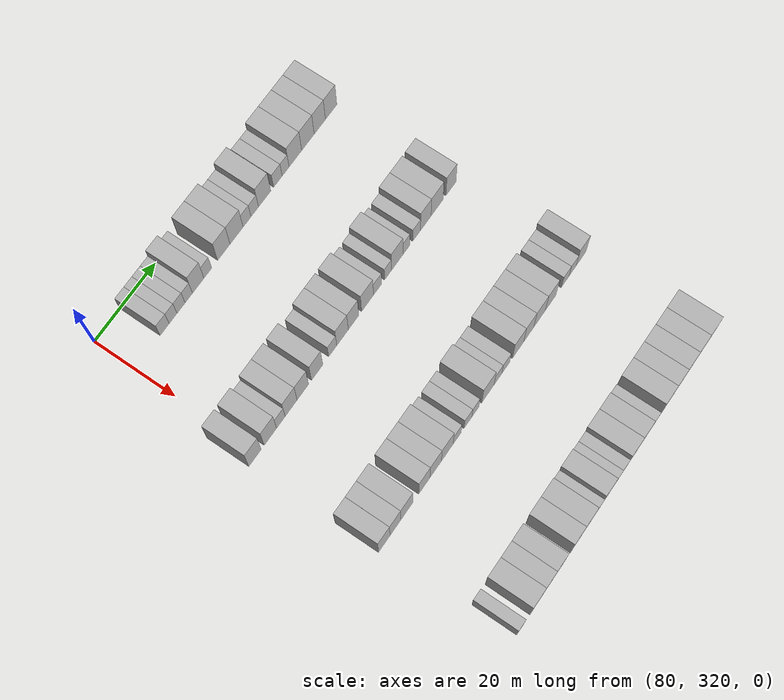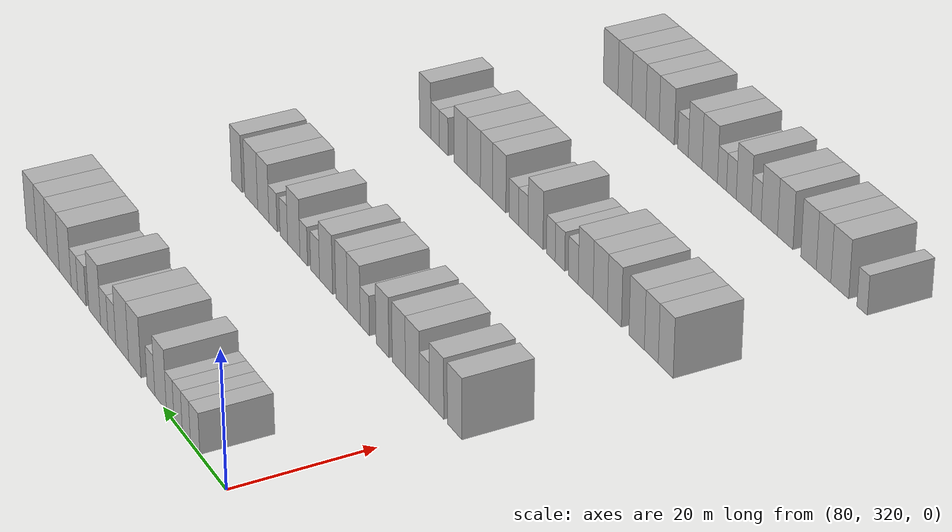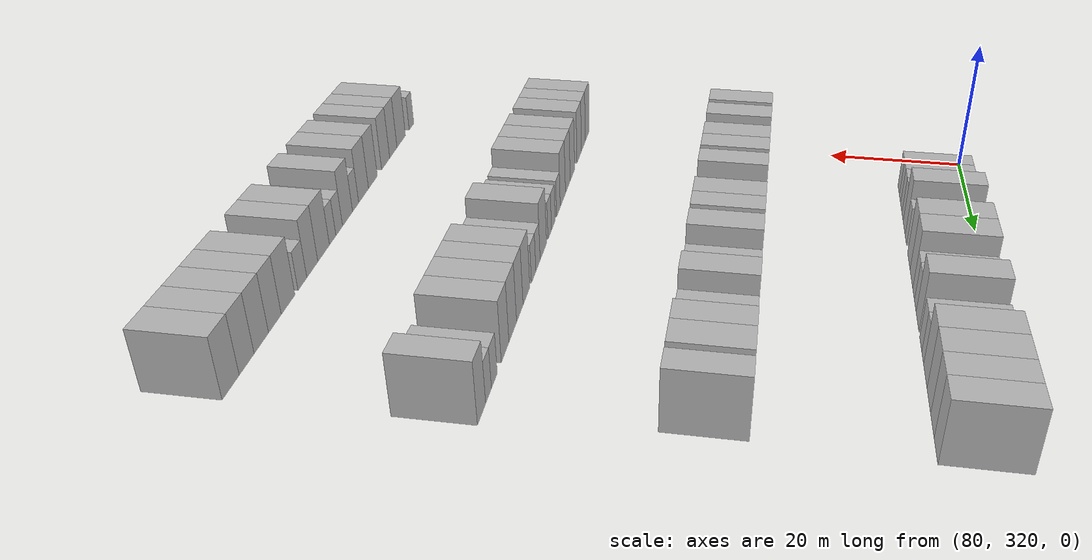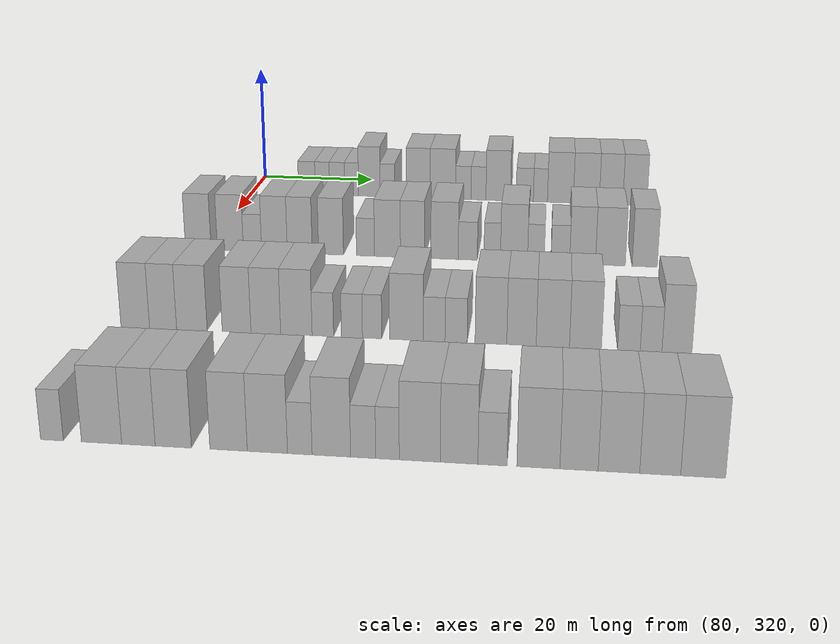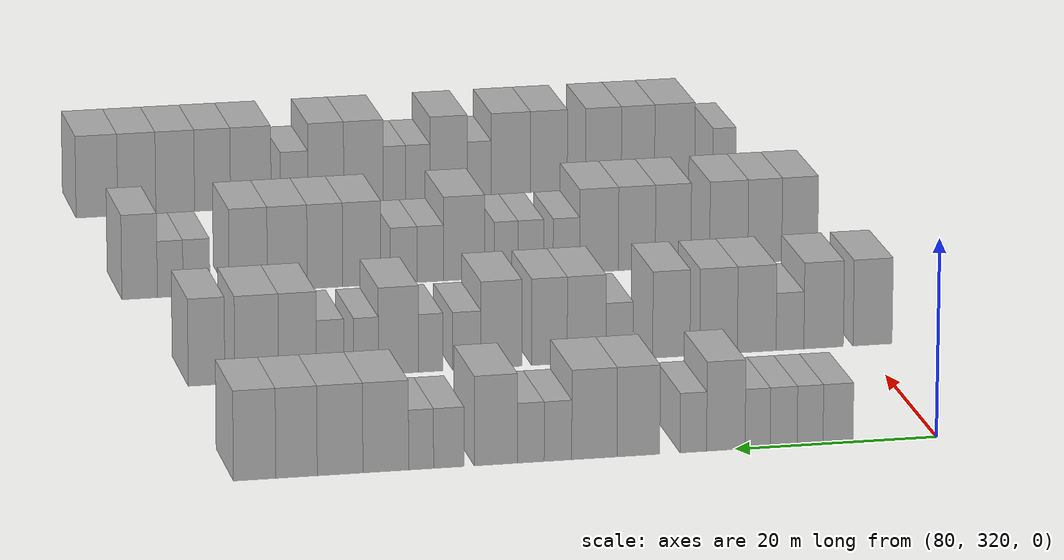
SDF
<sdf version="1.6">
 <world name="default">
  <model name="building_642">
   <static>1</static>
   <pose>85.0000 329.8066 0 0.000000 0.000000 0.000000</pose>
   <link name="link">
    <pose>0 0 3.00 0 0 0</pose>
    <collision name="collision"><geometry><box><size>10.0000 2.9880 6.0000</size></box></geometry></collision>
    <visual name="visual">
     <cast_shadows>0</cast_shadows>
     <geometry><box><size>10.0000 2.9880 6.0000</size></box></geometry>
     <material>
      <script>
       <uri>model://HANNAS_wall/materials/scripts</uri>
       <uri>model://HANNAS_wall/materials/textures</uri>
       <name>vrc/HANNAS_wall</name>
      </script>
     </material>
    </visual>
   </link>
  </model>
  <model name="building_643">
   <static>1</static>
   <pose>85.0000 332.5891 0 0.000000 0.000000 0.000000</pose>
   <link name="link">
    <pose>0 0 3.00 0 0 0</pose>
    <collision name="collision"><geometry><box><size>10.0000 2.5770 6.0000</size></box></geometry></collision>
    <visual name="visual">
     <cast_shadows>0</cast_shadows>
     <geometry><box><size>10.0000 2.5770 6.0000</size></box></geometry>
     <material>
      <script>
       <uri>model://HANNAS_wall/materials/scripts</uri>
       <uri>model://HANNAS_wall/materials/textures</uri>
       <name>vrc/HANNAS_wall</name>
      </script>
     </material>
    </visual>
   </link>
  </model>
  <model name="building_644">
   <static>1</static>
   <pose>85.0000 335.2180 0 0.000000 0.000000 0.000000</pose>
   <link name="link">
    <pose>0 0 3.00 0 0 0</pose>
    <collision name="collision"><geometry><box><size>10.0000 2.6808 6.0000</size></box></geometry></collision>
    <visual name="visual">
     <cast_shadows>0</cast_shadows>
     <geometry><box><size>10.0000 2.6808 6.0000</size></box></geometry>
     <material>
      <script>
       <uri>model://HANNAS_wall/materials/scripts</uri>
       <uri>model://HANNAS_wall/materials/textures</uri>
       <name>vrc/HANNAS_wall</name>
      </script>
     </material>
    </visual>
   </link>
  </model>
  <model name="building_645">
   <static>1</static>
   <pose>85.0000 337.7923 0 0.000000 0.000000 0.000000</pose>
   <link name="link">
    <pose>0 0 3.00 0 0 0</pose>
    <collision name="collision"><geometry><box><size>10.0000 2.4677 6.0000</size></box></geometry></collision>
    <visual name="visual">
     <cast_shadows>0</cast_shadows>
     <geometry><box><size>10.0000 2.4677 6.0000</size></box></geometry>
     <material>
      <script>
       <uri>model://HANNAS_wall/materials/scripts</uri>
       <uri>model://HANNAS_wall/materials/textures</uri>
       <name>vrc/HANNAS_wall</name>
      </script>
     </material>
    </visual>
   </link>
  </model>
  <model name="building_646">
   <static>1</static>
   <pose>85.0000 340.9295 0 0.000000 0.000000 0.000000</pose>
   <link name="link">
    <pose>0 0 4.50 0 0 0</pose>
    <collision name="collision"><geometry><box><size>10.0000 3.8066 9.0000</size></box></geometry></collision>
    <visual name="visual">
     <cast_shadows>0</cast_shadows>
     <geometry><box><size>10.0000 3.8066 9.0000</size></box></geometry>
     <material>
      <script>
       <uri>model://HANNAS_wall/materials/scripts</uri>
       <uri>model://HANNAS_wall/materials/textures</uri>
       <name>vrc/HANNAS_wall</name>
      </script>
     </material>
    </visual>
   </link>
  </model>
  <model name="building_647">
   <static>1</static>
   <pose>85.0000 344.1410 0 0.000000 0.000000 0.000000</pose>
   <link name="link">
    <pose>0 0 3.00 0 0 0</pose>
    <collision name="collision"><geometry><box><size>10.0000 2.6164 6.0000</size></box></geometry></collision>
    <visual name="visual">
     <cast_shadows>0</cast_shadows>
     <geometry><box><size>10.0000 2.6164 6.0000</size></box></geometry>
     <material>
      <script>
       <uri>model://HANNAS_wall/materials/scripts</uri>
       <uri>model://HANNAS_wall/materials/textures</uri>
       <name>vrc/HANNAS_wall</name>
      </script>
     </material>
    </visual>
   </link>
  </model>
  <model name="building_648">
   <static>1</static>
   <pose>85.0000 349.5538 0 0.000000 0.000000 0.000000</pose>
   <link name="link">
    <pose>0 0 4.50 0 0 0</pose>
    <collision name="collision"><geometry><box><size>10.0000 4.2094 9.0000</size></box></geometry></collision>
    <visual name="visual">
     <cast_shadows>0</cast_shadows>
     <geometry><box><size>10.0000 4.2094 9.0000</size></box></geometry>
     <material>
      <script>
       <uri>model://HANNAS_wall/materials/scripts</uri>
       <uri>model://HANNAS_wall/materials/textures</uri>
       <name>vrc/HANNAS_wall</name>
      </script>
     </material>
    </visual>
   </link>
  </model>
  <model name="building_649">
   <static>1</static>
   <pose>85.0000 353.8834 0 0.000000 0.000000 0.000000</pose>
   <link name="link">
    <pose>0 0 4.50 0 0 0</pose>
    <collision name="collision"><geometry><box><size>10.0000 4.4497 9.0000</size></box></geometry></collision>
    <visual name="visual">
     <cast_shadows>0</cast_shadows>
     <geometry><box><size>10.0000 4.4497 9.0000</size></box></geometry>
     <material>
      <script>
       <uri>model://HANNAS_wall/materials/scripts</uri>
       <uri>model://HANNAS_wall/materials/textures</uri>
       <name>vrc/HANNAS_wall</name>
      </script>
     </material>
    </visual>
   </link>
  </model>
  <model name="building_650">
   <static>1</static>
   <pose>85.0000 357.4576 0 0.000000 0.000000 0.000000</pose>
   <link name="link">
    <pose>0 0 3.00 0 0 0</pose>
    <collision name="collision"><geometry><box><size>10.0000 2.6986 6.0000</size></box></geometry></collision>
    <visual name="visual">
     <cast_shadows>0</cast_shadows>
     <geometry><box><size>10.0000 2.6986 6.0000</size></box></geometry>
     <material>
      <script>
       <uri>model://HANNAS_wall/materials/scripts</uri>
       <uri>model://HANNAS_wall/materials/textures</uri>
       <name>vrc/HANNAS_wall</name>
      </script>
     </material>
    </visual>
   </link>
  </model>
  <model name="building_651">
   <static>1</static>
   <pose>85.0000 360.1109 0 0.000000 0.000000 0.000000</pose>
   <link name="link">
    <pose>0 0 3.00 0 0 0</pose>
    <collision name="collision"><geometry><box><size>10.0000 2.6080 6.0000</size></box></geometry></collision>
    <visual name="visual">
     <cast_shadows>0</cast_shadows>
     <geometry><box><size>10.0000 2.6080 6.0000</size></box></geometry>
     <material>
      <script>
       <uri>model://HANNAS_wall/materials/scripts</uri>
       <uri>model://HANNAS_wall/materials/textures</uri>
       <name>vrc/HANNAS_wall</name>
      </script>
     </material>
    </visual>
   </link>
  </model>
  <model name="building_652">
   <static>1</static>
   <pose>85.0000 363.5317 0 0.000000 0.000000 0.000000</pose>
   <link name="link">
    <pose>0 0 4.50 0 0 0</pose>
    <collision name="collision"><geometry><box><size>10.0000 4.2335 9.0000</size></box></geometry></collision>
    <visual name="visual">
     <cast_shadows>0</cast_shadows>
     <geometry><box><size>10.0000 4.2335 9.0000</size></box></geometry>
     <material>
      <script>
       <uri>model://HANNAS_wall/materials/scripts</uri>
       <uri>model://HANNAS_wall/materials/textures</uri>
       <name>vrc/HANNAS_wall</name>
      </script>
     </material>
    </visual>
   </link>
  </model>
  <model name="building_653">
   <static>1</static>
   <pose>85.0000 368.1314 0 0.000000 0.000000 0.000000</pose>
   <link name="link">
    <pose>0 0 3.00 0 0 0</pose>
    <collision name="collision"><geometry><box><size>10.0000 2.9658 6.0000</size></box></geometry></collision>
    <visual name="visual">
     <cast_shadows>0</cast_shadows>
     <geometry><box><size>10.0000 2.9658 6.0000</size></box></geometry>
     <material>
      <script>
       <uri>model://HANNAS_wall/materials/scripts</uri>
       <uri>model://HANNAS_wall/materials/textures</uri>
       <name>vrc/HANNAS_wall</name>
      </script>
     </material>
    </visual>
   </link>
  </model>
  <model name="building_654">
   <static>1</static>
   <pose>85.0000 370.8312 0 0.000000 0.000000 0.000000</pose>
   <link name="link">
    <pose>0 0 3.00 0 0 0</pose>
    <collision name="collision"><geometry><box><size>10.0000 2.4338 6.0000</size></box></geometry></collision>
    <visual name="visual">
     <cast_shadows>0</cast_shadows>
     <geometry><box><size>10.0000 2.4338 6.0000</size></box></geometry>
     <material>
      <script>
       <uri>model://HANNAS_wall/materials/scripts</uri>
       <uri>model://HANNAS_wall/materials/textures</uri>
       <name>vrc/HANNAS_wall</name>
      </script>
     </material>
    </visual>
   </link>
  </model>
  <model name="building_655">
   <static>1</static>
   <pose>85.0000 374.2685 0 0.000000 0.000000 0.000000</pose>
   <link name="link">
    <pose>0 0 4.50 0 0 0</pose>
    <collision name="collision"><geometry><box><size>10.0000 4.4406 9.0000</size></box></geometry></collision>
    <visual name="visual">
     <cast_shadows>0</cast_shadows>
     <geometry><box><size>10.0000 4.4406 9.0000</size></box></geometry>
     <material>
      <script>
       <uri>model://HANNAS_wall/materials/scripts</uri>
       <uri>model://HANNAS_wall/materials/textures</uri>
       <name>vrc/HANNAS_wall</name>
      </script>
     </material>
    </visual>
   </link>
  </model>
  <model name="building_656">
   <static>1</static>
   <pose>85.0000 378.7043 0 0.000000 0.000000 0.000000</pose>
   <link name="link">
    <pose>0 0 4.50 0 0 0</pose>
    <collision name="collision"><geometry><box><size>10.0000 4.4311 9.0000</size></box></geometry></collision>
    <visual name="visual">
     <cast_shadows>0</cast_shadows>
     <geometry><box><size>10.0000 4.4311 9.0000</size></box></geometry>
     <material>
      <script>
       <uri>model://HANNAS_wall/materials/scripts</uri>
       <uri>model://HANNAS_wall/materials/textures</uri>
       <name>vrc/HANNAS_wall</name>
      </script>
     </material>
    </visual>
   </link>
  </model>
  <model name="building_657">
   <static>1</static>
   <pose>85.0000 382.9228 0 0.000000 0.000000 0.000000</pose>
   <link name="link">
    <pose>0 0 4.50 0 0 0</pose>
    <collision name="collision"><geometry><box><size>10.0000 4.0059 9.0000</size></box></geometry></collision>
    <visual name="visual">
     <cast_shadows>0</cast_shadows>
     <geometry><box><size>10.0000 4.0059 9.0000</size></box></geometry>
     <material>
      <script>
       <uri>model://HANNAS_wall/materials/scripts</uri>
       <uri>model://HANNAS_wall/materials/textures</uri>
       <name>vrc/HANNAS_wall</name>
      </script>
     </material>
    </visual>
   </link>
  </model>
  <model name="building_658">
   <static>1</static>
   <pose>85.0000 386.9741 0 0.000000 0.000000 0.000000</pose>
   <link name="link">
    <pose>0 0 4.50 0 0 0</pose>
    <collision name="collision"><geometry><box><size>10.0000 4.0967 9.0000</size></box></geometry></collision>
    <visual name="visual">
     <cast_shadows>0</cast_shadows>
     <geometry><box><size>10.0000 4.0967 9.0000</size></box></geometry>
     <material>
      <script>
       <uri>model://HANNAS_wall/materials/scripts</uri>
       <uri>model://HANNAS_wall/materials/textures</uri>
       <name>vrc/HANNAS_wall</name>
      </script>
     </material>
    </visual>
   </link>
  </model>
  <model name="building_865">
   <static>1</static>
   <pose>115.0000 318.8303 0 0.000000 0.000000 0.000000</pose>
   <link name="link">
    <pose>0 0 4.50 0 0 0</pose>
    <collision name="collision"><geometry><box><size>10.0000 4.0419 9.0000</size></box></geometry></collision>
    <visual name="visual">
     <cast_shadows>0</cast_shadows>
     <geometry><box><size>10.0000 4.0419 9.0000</size></box></geometry>
     <material>
      <script>
       <uri>model://HANNAS_wall/materials/scripts</uri>
       <uri>model://HANNAS_wall/materials/textures</uri>
       <name>vrc/HANNAS_wall</name>
      </script>
     </material>
    </visual>
   </link>
  </model>
  <model name="building_866">
   <static>1</static>
   <pose>115.0000 323.8919 0 0.000000 0.000000 0.000000</pose>
   <link name="link">
    <pose>0 0 4.50 0 0 0</pose>
    <collision name="collision"><geometry><box><size>10.0000 4.0814 9.0000</size></box></geometry></collision>
    <visual name="visual">
     <cast_shadows>0</cast_shadows>
     <geometry><box><size>10.0000 4.0814 9.0000</size></box></geometry>
     <material>
      <script>
       <uri>model://HANNAS_wall/materials/scripts</uri>
       <uri>model://HANNAS_wall/materials/textures</uri>
       <name>vrc/HANNAS_wall</name>
      </script>
     </material>
    </visual>
   </link>
  </model>
  <model name="building_867">
   <static>1</static>
   <pose>115.0000 327.3626 0 0.000000 0.000000 0.000000</pose>
   <link name="link">
    <pose>0 0 3.00 0 0 0</pose>
    <collision name="collision"><geometry><box><size>10.0000 2.8599 6.0000</size></box></geometry></collision>
    <visual name="visual">
     <cast_shadows>0</cast_shadows>
     <geometry><box><size>10.0000 2.8599 6.0000</size></box></geometry>
     <material>
      <script>
       <uri>model://HANNAS_wall/materials/scripts</uri>
       <uri>model://HANNAS_wall/materials/textures</uri>
       <name>vrc/HANNAS_wall</name>
      </script>
     </material>
    </visual>
   </link>
  </model>
  <model name="building_868">
   <static>1</static>
   <pose>115.0000 330.7887 0 0.000000 0.000000 0.000000</pose>
   <link name="link">
    <pose>0 0 4.50 0 0 0</pose>
    <collision name="collision"><geometry><box><size>10.0000 3.9924 9.0000</size></box></geometry></collision>
    <visual name="visual">
     <cast_shadows>0</cast_shadows>
     <geometry><box><size>10.0000 3.9924 9.0000</size></box></geometry>
     <material>
      <script>
       <uri>model://HANNAS_wall/materials/scripts</uri>
       <uri>model://HANNAS_wall/materials/textures</uri>
       <name>vrc/HANNAS_wall</name>
      </script>
     </material>
    </visual>
   </link>
  </model>
  <model name="building_869">
   <static>1</static>
   <pose>115.0000 334.7144 0 0.000000 0.000000 0.000000</pose>
   <link name="link">
    <pose>0 0 4.50 0 0 0</pose>
    <collision name="collision"><geometry><box><size>10.0000 3.8589 9.0000</size></box></geometry></collision>
    <visual name="visual">
     <cast_shadows>0</cast_shadows>
     <geometry><box><size>10.0000 3.8589 9.0000</size></box></geometry>
     <material>
      <script>
       <uri>model://HANNAS_wall/materials/scripts</uri>
       <uri>model://HANNAS_wall/materials/textures</uri>
       <name>vrc/HANNAS_wall</name>
      </script>
     </material>
    </visual>
   </link>
  </model>
  <model name="building_870">
   <static>1</static>
   <pose>115.0000 339.5596 0 0.000000 0.000000 0.000000</pose>
   <link name="link">
    <pose>0 0 4.50 0 0 0</pose>
    <collision name="collision"><geometry><box><size>10.0000 3.8315 9.0000</size></box></geometry></collision>
    <visual name="visual">
     <cast_shadows>0</cast_shadows>
     <geometry><box><size>10.0000 3.8315 9.0000</size></box></geometry>
     <material>
      <script>
       <uri>model://HANNAS_wall/materials/scripts</uri>
       <uri>model://HANNAS_wall/materials/textures</uri>
       <name>vrc/HANNAS_wall</name>
      </script>
     </material>
    </visual>
   </link>
  </model>
  <model name="building_871">
   <static>1</static>
   <pose>115.0000 344.8539 0 0.000000 0.000000 0.000000</pose>
   <link name="link">
    <pose>0 0 3.00 0 0 0</pose>
    <collision name="collision"><geometry><box><size>10.0000 2.7570 6.0000</size></box></geometry></collision>
    <visual name="visual">
     <cast_shadows>0</cast_shadows>
     <geometry><box><size>10.0000 2.7570 6.0000</size></box></geometry>
     <material>
      <script>
       <uri>model://HANNAS_wall/materials/scripts</uri>
       <uri>model://HANNAS_wall/materials/textures</uri>
       <name>vrc/HANNAS_wall</name>
      </script>
     </material>
    </visual>
   </link>
  </model>
  <model name="building_872">
   <static>1</static>
   <pose>115.0000 348.2173 0 0.000000 0.000000 0.000000</pose>
   <link name="link">
    <pose>0 0 4.50 0 0 0</pose>
    <collision name="collision"><geometry><box><size>10.0000 3.9699 9.0000</size></box></geometry></collision>
    <visual name="visual">
     <cast_shadows>0</cast_shadows>
     <geometry><box><size>10.0000 3.9699 9.0000</size></box></geometry>
     <material>
      <script>
       <uri>model://HANNAS_wall/materials/scripts</uri>
       <uri>model://HANNAS_wall/materials/textures</uri>
       <name>vrc/HANNAS_wall</name>
      </script>
     </material>
    </visual>
   </link>
  </model>
  <model name="building_873">
   <static>1</static>
   <pose>115.0000 352.0144 0 0.000000 0.000000 0.000000</pose>
   <link name="link">
    <pose>0 0 4.50 0 0 0</pose>
    <collision name="collision"><geometry><box><size>10.0000 3.6242 9.0000</size></box></geometry></collision>
    <visual name="visual">
     <cast_shadows>0</cast_shadows>
     <geometry><box><size>10.0000 3.6242 9.0000</size></box></geometry>
     <material>
      <script>
       <uri>model://HANNAS_wall/materials/scripts</uri>
       <uri>model://HANNAS_wall/materials/textures</uri>
       <name>vrc/HANNAS_wall</name>
      </script>
     </material>
    </visual>
   </link>
  </model>
  <model name="building_874">
   <static>1</static>
   <pose>115.0000 356.8987 0 0.000000 0.000000 0.000000</pose>
   <link name="link">
    <pose>0 0 4.50 0 0 0</pose>
    <collision name="collision"><geometry><box><size>10.0000 4.1443 9.0000</size></box></geometry></collision>
    <visual name="visual">
     <cast_shadows>0</cast_shadows>
     <geometry><box><size>10.0000 4.1443 9.0000</size></box></geometry>
     <material>
      <script>
       <uri>model://HANNAS_wall/materials/scripts</uri>
       <uri>model://HANNAS_wall/materials/textures</uri>
       <name>vrc/HANNAS_wall</name>
      </script>
     </material>
    </visual>
   </link>
  </model>
  <model name="building_875">
   <static>1</static>
   <pose>115.0000 360.4039 0 0.000000 0.000000 0.000000</pose>
   <link name="link">
    <pose>0 0 3.00 0 0 0</pose>
    <collision name="collision"><geometry><box><size>10.0000 2.8662 6.0000</size></box></geometry></collision>
    <visual name="visual">
     <cast_shadows>0</cast_shadows>
     <geometry><box><size>10.0000 2.8662 6.0000</size></box></geometry>
     <material>
      <script>
       <uri>model://HANNAS_wall/materials/scripts</uri>
       <uri>model://HANNAS_wall/materials/textures</uri>
       <name>vrc/HANNAS_wall</name>
      </script>
     </material>
    </visual>
   </link>
  </model>
  <model name="building_876">
   <static>1</static>
   <pose>115.0000 364.0717 0 0.000000 0.000000 0.000000</pose>
   <link name="link">
    <pose>0 0 3.00 0 0 0</pose>
    <collision name="collision"><geometry><box><size>10.0000 2.4694 6.0000</size></box></geometry></collision>
    <visual name="visual">
     <cast_shadows>0</cast_shadows>
     <geometry><box><size>10.0000 2.4694 6.0000</size></box></geometry>
     <material>
      <script>
       <uri>model://HANNAS_wall/materials/scripts</uri>
       <uri>model://HANNAS_wall/materials/textures</uri>
       <name>vrc/HANNAS_wall</name>
      </script>
     </material>
    </visual>
   </link>
  </model>
  <model name="building_877">
   <static>1</static>
   <pose>115.0000 367.3325 0 0.000000 0.000000 0.000000</pose>
   <link name="link">
    <pose>0 0 4.50 0 0 0</pose>
    <collision name="collision"><geometry><box><size>10.0000 4.0522 9.0000</size></box></geometry></collision>
    <visual name="visual">
     <cast_shadows>0</cast_shadows>
     <geometry><box><size>10.0000 4.0522 9.0000</size></box></geometry>
     <material>
      <script>
       <uri>model://HANNAS_wall/materials/scripts</uri>
       <uri>model://HANNAS_wall/materials/textures</uri>
       <name>vrc/HANNAS_wall</name>
      </script>
     </material>
    </visual>
   </link>
  </model>
  <model name="building_878">
   <static>1</static>
   <pose>115.0000 370.6059 0 0.000000 0.000000 0.000000</pose>
   <link name="link">
    <pose>0 0 3.00 0 0 0</pose>
    <collision name="collision"><geometry><box><size>10.0000 2.4945 6.0000</size></box></geometry></collision>
    <visual name="visual">
     <cast_shadows>0</cast_shadows>
     <geometry><box><size>10.0000 2.4945 6.0000</size></box></geometry>
     <material>
      <script>
       <uri>model://HANNAS_wall/materials/scripts</uri>
       <uri>model://HANNAS_wall/materials/textures</uri>
       <name>vrc/HANNAS_wall</name>
      </script>
     </material>
    </visual>
   </link>
  </model>
  <model name="building_879">
   <static>1</static>
   <pose>115.0000 374.2324 0 0.000000 0.000000 0.000000</pose>
   <link name="link">
    <pose>0 0 3.00 0 0 0</pose>
    <collision name="collision"><geometry><box><size>10.0000 2.7585 6.0000</size></box></geometry></collision>
    <visual name="visual">
     <cast_shadows>0</cast_shadows>
     <geometry><box><size>10.0000 2.7585 6.0000</size></box></geometry>
     <material>
      <script>
       <uri>model://HANNAS_wall/materials/scripts</uri>
       <uri>model://HANNAS_wall/materials/textures</uri>
       <name>vrc/HANNAS_wall</name>
      </script>
     </material>
    </visual>
   </link>
  </model>
  <model name="building_880">
   <static>1</static>
   <pose>115.0000 377.5161 0 0.000000 0.000000 0.000000</pose>
   <link name="link">
    <pose>0 0 4.50 0 0 0</pose>
    <collision name="collision"><geometry><box><size>10.0000 3.8089 9.0000</size></box></geometry></collision>
    <visual name="visual">
     <cast_shadows>0</cast_shadows>
     <geometry><box><size>10.0000 3.8089 9.0000</size></box></geometry>
     <material>
      <script>
       <uri>model://HANNAS_wall/materials/scripts</uri>
       <uri>model://HANNAS_wall/materials/textures</uri>
       <name>vrc/HANNAS_wall</name>
      </script>
     </material>
    </visual>
   </link>
  </model>
  <model name="building_881">
   <static>1</static>
   <pose>115.0000 381.6165 0 0.000000 0.000000 0.000000</pose>
   <link name="link">
    <pose>0 0 4.50 0 0 0</pose>
    <collision name="collision"><geometry><box><size>10.0000 4.3920 9.0000</size></box></geometry></collision>
    <visual name="visual">
     <cast_shadows>0</cast_shadows>
     <geometry><box><size>10.0000 4.3920 9.0000</size></box></geometry>
     <material>
      <script>
       <uri>model://HANNAS_wall/materials/scripts</uri>
       <uri>model://HANNAS_wall/materials/textures</uri>
       <name>vrc/HANNAS_wall</name>
      </script>
     </material>
    </visual>
   </link>
  </model>
  <model name="building_882">
   <static>1</static>
   <pose>115.0000 386.6468 0 0.000000 0.000000 0.000000</pose>
   <link name="link">
    <pose>0 0 4.50 0 0 0</pose>
    <collision name="collision"><geometry><box><size>10.0000 3.6685 9.0000</size></box></geometry></collision>
    <visual name="visual">
     <cast_shadows>0</cast_shadows>
     <geometry><box><size>10.0000 3.6685 9.0000</size></box></geometry>
     <material>
      <script>
       <uri>model://HANNAS_wall/materials/scripts</uri>
       <uri>model://HANNAS_wall/materials/textures</uri>
       <name>vrc/HANNAS_wall</name>
      </script>
     </material>
    </visual>
   </link>
  </model>
  <model name="building_1089">
   <static>1</static>
   <pose>145.0000 319.0963 0 0.000000 0.000000 0.000000</pose>
   <link name="link">
    <pose>0 0 4.50 0 0 0</pose>
    <collision name="collision"><geometry><box><size>10.0000 3.8428 9.0000</size></box></geometry></collision>
    <visual name="visual">
     <cast_shadows>0</cast_shadows>
     <geometry><box><size>10.0000 3.8428 9.0000</size></box></geometry>
     <material>
      <script>
       <uri>model://HANNAS_wall/materials/scripts</uri>
       <uri>model://HANNAS_wall/materials/textures</uri>
       <name>vrc/HANNAS_wall</name>
      </script>
     </material>
    </visual>
   </link>
  </model>
  <model name="building_1090">
   <static>1</static>
   <pose>145.0000 322.8324 0 0.000000 0.000000 0.000000</pose>
   <link name="link">
    <pose>0 0 4.50 0 0 0</pose>
    <collision name="collision"><geometry><box><size>10.0000 3.6293 9.0000</size></box></geometry></collision>
    <visual name="visual">
     <cast_shadows>0</cast_shadows>
     <geometry><box><size>10.0000 3.6293 9.0000</size></box></geometry>
     <material>
      <script>
       <uri>model://HANNAS_wall/materials/scripts</uri>
       <uri>model://HANNAS_wall/materials/textures</uri>
       <name>vrc/HANNAS_wall</name>
      </script>
     </material>
    </visual>
   </link>
  </model>
  <model name="building_1091">
   <static>1</static>
   <pose>145.0000 326.6824 0 0.000000 0.000000 0.000000</pose>
   <link name="link">
    <pose>0 0 4.50 0 0 0</pose>
    <collision name="collision"><geometry><box><size>10.0000 4.0707 9.0000</size></box></geometry></collision>
    <visual name="visual">
     <cast_shadows>0</cast_shadows>
     <geometry><box><size>10.0000 4.0707 9.0000</size></box></geometry>
     <material>
      <script>
       <uri>model://HANNAS_wall/materials/scripts</uri>
       <uri>model://HANNAS_wall/materials/textures</uri>
       <name>vrc/HANNAS_wall</name>
      </script>
     </material>
    </visual>
   </link>
  </model>
  <model name="building_1092">
   <static>1</static>
   <pose>145.0000 332.6165 0 0.000000 0.000000 0.000000</pose>
   <link name="link">
    <pose>0 0 4.50 0 0 0</pose>
    <collision name="collision"><geometry><box><size>10.0000 3.7974 9.0000</size></box></geometry></collision>
    <visual name="visual">
     <cast_shadows>0</cast_shadows>
     <geometry><box><size>10.0000 3.7974 9.0000</size></box></geometry>
     <material>
      <script>
       <uri>model://HANNAS_wall/materials/scripts</uri>
       <uri>model://HANNAS_wall/materials/textures</uri>
       <name>vrc/HANNAS_wall</name>
      </script>
     </material>
    </visual>
   </link>
  </model>
  <model name="building_1093">
   <static>1</static>
   <pose>145.0000 336.4706 0 0.000000 0.000000 0.000000</pose>
   <link name="link">
    <pose>0 0 4.50 0 0 0</pose>
    <collision name="collision"><geometry><box><size>10.0000 3.9108 9.0000</size></box></geometry></collision>
    <visual name="visual">
     <cast_shadows>0</cast_shadows>
     <geometry><box><size>10.0000 3.9108 9.0000</size></box></geometry>
     <material>
      <script>
       <uri>model://HANNAS_wall/materials/scripts</uri>
       <uri>model://HANNAS_wall/materials/textures</uri>
       <name>vrc/HANNAS_wall</name>
      </script>
     </material>
    </visual>
   </link>
  </model>
  <model name="building_1094">
   <static>1</static>
   <pose>145.0000 340.4813 0 0.000000 0.000000 0.000000</pose>
   <link name="link">
    <pose>0 0 4.50 0 0 0</pose>
    <collision name="collision"><geometry><box><size>10.0000 4.1107 9.0000</size></box></geometry></collision>
    <visual name="visual">
     <cast_shadows>0</cast_shadows>
     <geometry><box><size>10.0000 4.1107 9.0000</size></box></geometry>
     <material>
      <script>
       <uri>model://HANNAS_wall/materials/scripts</uri>
       <uri>model://HANNAS_wall/materials/textures</uri>
       <name>vrc/HANNAS_wall</name>
      </script>
     </material>
    </visual>
   </link>
  </model>
  <model name="building_1095">
   <static>1</static>
   <pose>145.0000 343.9397 0 0.000000 0.000000 0.000000</pose>
   <link name="link">
    <pose>0 0 3.00 0 0 0</pose>
    <collision name="collision"><geometry><box><size>10.0000 2.8060 6.0000</size></box></geometry></collision>
    <visual name="visual">
     <cast_shadows>0</cast_shadows>
     <geometry><box><size>10.0000 2.8060 6.0000</size></box></geometry>
     <material>
      <script>
       <uri>model://HANNAS_wall/materials/scripts</uri>
       <uri>model://HANNAS_wall/materials/textures</uri>
       <name>vrc/HANNAS_wall</name>
      </script>
     </material>
    </visual>
   </link>
  </model>
  <model name="building_1096">
   <static>1</static>
   <pose>145.0000 347.7029 0 0.000000 0.000000 0.000000</pose>
   <link name="link">
    <pose>0 0 3.00 0 0 0</pose>
    <collision name="collision"><geometry><box><size>10.0000 2.7205 6.0000</size></box></geometry></collision>
    <visual name="visual">
     <cast_shadows>0</cast_shadows>
     <geometry><box><size>10.0000 2.7205 6.0000</size></box></geometry>
     <material>
      <script>
       <uri>model://HANNAS_wall/materials/scripts</uri>
       <uri>model://HANNAS_wall/materials/textures</uri>
       <name>vrc/HANNAS_wall</name>
      </script>
     </material>
    </visual>
   </link>
  </model>
  <model name="building_1097">
   <static>1</static>
   <pose>145.0000 350.3092 0 0.000000 0.000000 0.000000</pose>
   <link name="link">
    <pose>0 0 3.00 0 0 0</pose>
    <collision name="collision"><geometry><box><size>10.0000 2.4922 6.0000</size></box></geometry></collision>
    <visual name="visual">
     <cast_shadows>0</cast_shadows>
     <geometry><box><size>10.0000 2.4922 6.0000</size></box></geometry>
     <material>
      <script>
       <uri>model://HANNAS_wall/materials/scripts</uri>
       <uri>model://HANNAS_wall/materials/textures</uri>
       <name>vrc/HANNAS_wall</name>
      </script>
     </material>
    </visual>
   </link>
  </model>
  <model name="building_1098">
   <static>1</static>
   <pose>145.0000 354.7285 0 0.000000 0.000000 0.000000</pose>
   <link name="link">
    <pose>0 0 4.50 0 0 0</pose>
    <collision name="collision"><geometry><box><size>10.0000 4.3464 9.0000</size></box></geometry></collision>
    <visual name="visual">
     <cast_shadows>0</cast_shadows>
     <geometry><box><size>10.0000 4.3464 9.0000</size></box></geometry>
     <material>
      <script>
       <uri>model://HANNAS_wall/materials/scripts</uri>
       <uri>model://HANNAS_wall/materials/textures</uri>
       <name>vrc/HANNAS_wall</name>
      </script>
     </material>
    </visual>
   </link>
  </model>
  <model name="building_1099">
   <static>1</static>
   <pose>145.0000 358.2886 0 0.000000 0.000000 0.000000</pose>
   <link name="link">
    <pose>0 0 3.00 0 0 0</pose>
    <collision name="collision"><geometry><box><size>10.0000 2.7739 6.0000</size></box></geometry></collision>
    <visual name="visual">
     <cast_shadows>0</cast_shadows>
     <geometry><box><size>10.0000 2.7739 6.0000</size></box></geometry>
     <material>
      <script>
       <uri>model://HANNAS_wall/materials/scripts</uri>
       <uri>model://HANNAS_wall/materials/textures</uri>
       <name>vrc/HANNAS_wall</name>
      </script>
     </material>
    </visual>
   </link>
  </model>
  <model name="building_1100">
   <static>1</static>
   <pose>145.0000 361.0791 0 0.000000 0.000000 0.000000</pose>
   <link name="link">
    <pose>0 0 3.00 0 0 0</pose>
    <collision name="collision"><geometry><box><size>10.0000 2.8070 6.0000</size></box></geometry></collision>
    <visual name="visual">
     <cast_shadows>0</cast_shadows>
     <geometry><box><size>10.0000 2.8070 6.0000</size></box></geometry>
     <material>
      <script>
       <uri>model://HANNAS_wall/materials/scripts</uri>
       <uri>model://HANNAS_wall/materials/textures</uri>
       <name>vrc/HANNAS_wall</name>
      </script>
     </material>
    </visual>
   </link>
  </model>
  <model name="building_1101">
   <static>1</static>
   <pose>145.0000 365.4876 0 0.000000 0.000000 0.000000</pose>
   <link name="link">
    <pose>0 0 4.50 0 0 0</pose>
    <collision name="collision"><geometry><box><size>10.0000 4.0100 9.0000</size></box></geometry></collision>
    <visual name="visual">
     <cast_shadows>0</cast_shadows>
     <geometry><box><size>10.0000 4.0100 9.0000</size></box></geometry>
     <material>
      <script>
       <uri>model://HANNAS_wall/materials/scripts</uri>
       <uri>model://HANNAS_wall/materials/textures</uri>
       <name>vrc/HANNAS_wall</name>
      </script>
     </material>
    </visual>
   </link>
  </model>
  <model name="building_1102">
   <static>1</static>
   <pose>145.0000 369.3406 0 0.000000 0.000000 0.000000</pose>
   <link name="link">
    <pose>0 0 4.50 0 0 0</pose>
    <collision name="collision"><geometry><box><size>10.0000 3.6960 9.0000</size></box></geometry></collision>
    <visual name="visual">
     <cast_shadows>0</cast_shadows>
     <geometry><box><size>10.0000 3.6960 9.0000</size></box></geometry>
     <material>
      <script>
       <uri>model://HANNAS_wall/materials/scripts</uri>
       <uri>model://HANNAS_wall/materials/textures</uri>
       <name>vrc/HANNAS_wall</name>
      </script>
     </material>
    </visual>
   </link>
  </model>
  <model name="building_1103">
   <static>1</static>
   <pose>145.0000 373.2684 0 0.000000 0.000000 0.000000</pose>
   <link name="link">
    <pose>0 0 4.50 0 0 0</pose>
    <collision name="collision"><geometry><box><size>10.0000 4.1596 9.0000</size></box></geometry></collision>
    <visual name="visual">
     <cast_shadows>0</cast_shadows>
     <geometry><box><size>10.0000 4.1596 9.0000</size></box></geometry>
     <material>
      <script>
       <uri>model://HANNAS_wall/materials/scripts</uri>
       <uri>model://HANNAS_wall/materials/textures</uri>
       <name>vrc/HANNAS_wall</name>
      </script>
     </material>
    </visual>
   </link>
  </model>
  <model name="building_1104">
   <static>1</static>
   <pose>145.0000 377.3403 0 0.000000 0.000000 0.000000</pose>
   <link name="link">
    <pose>0 0 4.50 0 0 0</pose>
    <collision name="collision"><geometry><box><size>10.0000 3.9842 9.0000</size></box></geometry></collision>
    <visual name="visual">
     <cast_shadows>0</cast_shadows>
     <geometry><box><size>10.0000 3.9842 9.0000</size></box></geometry>
     <material>
      <script>
       <uri>model://HANNAS_wall/materials/scripts</uri>
       <uri>model://HANNAS_wall/materials/textures</uri>
       <name>vrc/HANNAS_wall</name>
      </script>
     </material>
    </visual>
   </link>
  </model>
  <model name="building_1105">
   <static>1</static>
   <pose>145.0000 382.7294 0 0.000000 0.000000 0.000000</pose>
   <link name="link">
    <pose>0 0 3.00 0 0 0</pose>
    <collision name="collision"><geometry><box><size>10.0000 2.7938 6.0000</size></box></geometry></collision>
    <visual name="visual">
     <cast_shadows>0</cast_shadows>
     <geometry><box><size>10.0000 2.7938 6.0000</size></box></geometry>
     <material>
      <script>
       <uri>model://HANNAS_wall/materials/scripts</uri>
       <uri>model://HANNAS_wall/materials/textures</uri>
       <name>vrc/HANNAS_wall</name>
      </script>
     </material>
    </visual>
   </link>
  </model>
  <model name="building_1106">
   <static>1</static>
   <pose>145.0000 385.4598 0 0.000000 0.000000 0.000000</pose>
   <link name="link">
    <pose>0 0 3.00 0 0 0</pose>
    <collision name="collision"><geometry><box><size>10.0000 2.6670 6.0000</size></box></geometry></collision>
    <visual name="visual">
     <cast_shadows>0</cast_shadows>
     <geometry><box><size>10.0000 2.6670 6.0000</size></box></geometry>
     <material>
      <script>
       <uri>model://HANNAS_wall/materials/scripts</uri>
       <uri>model://HANNAS_wall/materials/textures</uri>
       <name>vrc/HANNAS_wall</name>
      </script>
     </material>
    </visual>
   </link>
  </model>
  <model name="building_1107">
   <static>1</static>
   <pose>145.0000 388.6311 0 0.000000 0.000000 0.000000</pose>
   <link name="link">
    <pose>0 0 4.50 0 0 0</pose>
    <collision name="collision"><geometry><box><size>10.0000 3.6757 9.0000</size></box></geometry></collision>
    <visual name="visual">
     <cast_shadows>0</cast_shadows>
     <geometry><box><size>10.0000 3.6757 9.0000</size></box></geometry>
     <material>
      <script>
       <uri>model://HANNAS_wall/materials/scripts</uri>
       <uri>model://HANNAS_wall/materials/textures</uri>
       <name>vrc/HANNAS_wall</name>
      </script>
     </material>
    </visual>
   </link>
  </model>
  <model name="building_1325">
   <static>1</static>
   <pose>175.0000 320.2010 0 0.000000 0.000000 0.000000</pose>
   <link name="link">
    <pose>0 0 3.00 0 0 0</pose>
    <collision name="collision"><geometry><box><size>10.0000 2.5285 6.0000</size></box></geometry></collision>
    <visual name="visual">
     <cast_shadows>0</cast_shadows>
     <geometry><box><size>10.0000 2.5285 6.0000</size></box></geometry>
     <material>
      <script>
       <uri>model://HANNAS_wall/materials/scripts</uri>
       <uri>model://HANNAS_wall/materials/textures</uri>
       <name>vrc/HANNAS_wall</name>
      </script>
     </material>
    </visual>
   </link>
  </model>
  <model name="building_1326">
   <static>1</static>
   <pose>175.0000 325.6827 0 0.000000 0.000000 0.000000</pose>
   <link name="link">
    <pose>0 0 4.50 0 0 0</pose>
    <collision name="collision"><geometry><box><size>10.0000 4.4349 9.0000</size></box></geometry></collision>
    <visual name="visual">
     <cast_shadows>0</cast_shadows>
     <geometry><box><size>10.0000 4.4349 9.0000</size></box></geometry>
     <material>
      <script>
       <uri>model://HANNAS_wall/materials/scripts</uri>
       <uri>model://HANNAS_wall/materials/textures</uri>
       <name>vrc/HANNAS_wall</name>
      </script>
     </material>
    </visual>
   </link>
  </model>
  <model name="building_1327">
   <static>1</static>
   <pose>175.0000 329.7337 0 0.000000 0.000000 0.000000</pose>
   <link name="link">
    <pose>0 0 4.50 0 0 0</pose>
    <collision name="collision"><geometry><box><size>10.0000 3.6670 9.0000</size></box></geometry></collision>
    <visual name="visual">
     <cast_shadows>0</cast_shadows>
     <geometry><box><size>10.0000 3.6670 9.0000</size></box></geometry>
     <material>
      <script>
       <uri>model://HANNAS_wall/materials/scripts</uri>
       <uri>model://HANNAS_wall/materials/textures</uri>
       <name>vrc/HANNAS_wall</name>
      </script>
     </material>
    </visual>
   </link>
  </model>
  <model name="building_1328">
   <static>1</static>
   <pose>175.0000 333.5324 0 0.000000 0.000000 0.000000</pose>
   <link name="link">
    <pose>0 0 4.50 0 0 0</pose>
    <collision name="collision"><geometry><box><size>10.0000 3.9304 9.0000</size></box></geometry></collision>
    <visual name="visual">
     <cast_shadows>0</cast_shadows>
     <geometry><box><size>10.0000 3.9304 9.0000</size></box></geometry>
     <material>
      <script>
       <uri>model://HANNAS_wall/materials/scripts</uri>
       <uri>model://HANNAS_wall/materials/textures</uri>
       <name>vrc/HANNAS_wall</name>
      </script>
     </material>
    </visual>
   </link>
  </model>
  <model name="building_1329">
   <static>1</static>
   <pose>175.0000 339.5108 0 0.000000 0.000000 0.000000</pose>
   <link name="link">
    <pose>0 0 4.50 0 0 0</pose>
    <collision name="collision"><geometry><box><size>10.0000 4.0265 9.0000</size></box></geometry></collision>
    <visual name="visual">
     <cast_shadows>0</cast_shadows>
     <geometry><box><size>10.0000 4.0265 9.0000</size></box></geometry>
     <material>
      <script>
       <uri>model://HANNAS_wall/materials/scripts</uri>
       <uri>model://HANNAS_wall/materials/textures</uri>
       <name>vrc/HANNAS_wall</name>
      </script>
     </material>
    </visual>
   </link>
  </model>
  <model name="building_1330">
   <static>1</static>
   <pose>175.0000 343.6714 0 0.000000 0.000000 0.000000</pose>
   <link name="link">
    <pose>0 0 4.50 0 0 0</pose>
    <collision name="collision"><geometry><box><size>10.0000 4.2947 9.0000</size></box></geometry></collision>
    <visual name="visual">
     <cast_shadows>0</cast_shadows>
     <geometry><box><size>10.0000 4.2947 9.0000</size></box></geometry>
     <material>
      <script>
       <uri>model://HANNAS_wall/materials/scripts</uri>
       <uri>model://HANNAS_wall/materials/textures</uri>
       <name>vrc/HANNAS_wall</name>
      </script>
     </material>
    </visual>
   </link>
  </model>
  <model name="building_1331">
   <static>1</static>
   <pose>175.0000 347.1267 0 0.000000 0.000000 0.000000</pose>
   <link name="link">
    <pose>0 0 3.00 0 0 0</pose>
    <collision name="collision"><geometry><box><size>10.0000 2.6158 6.0000</size></box></geometry></collision>
    <visual name="visual">
     <cast_shadows>0</cast_shadows>
     <geometry><box><size>10.0000 2.6158 6.0000</size></box></geometry>
     <material>
      <script>
       <uri>model://HANNAS_wall/materials/scripts</uri>
       <uri>model://HANNAS_wall/materials/textures</uri>
       <name>vrc/HANNAS_wall</name>
      </script>
     </material>
    </visual>
   </link>
  </model>
  <model name="building_1332">
   <static>1</static>
   <pose>175.0000 350.4679 0 0.000000 0.000000 0.000000</pose>
   <link name="link">
    <pose>0 0 4.50 0 0 0</pose>
    <collision name="collision"><geometry><box><size>10.0000 4.0666 9.0000</size></box></geometry></collision>
    <visual name="visual">
     <cast_shadows>0</cast_shadows>
     <geometry><box><size>10.0000 4.0666 9.0000</size></box></geometry>
     <material>
      <script>
       <uri>model://HANNAS_wall/materials/scripts</uri>
       <uri>model://HANNAS_wall/materials/textures</uri>
       <name>vrc/HANNAS_wall</name>
      </script>
     </material>
    </visual>
   </link>
  </model>
  <model name="building_1333">
   <static>1</static>
   <pose>175.0000 353.8183 0 0.000000 0.000000 0.000000</pose>
   <link name="link">
    <pose>0 0 3.00 0 0 0</pose>
    <collision name="collision"><geometry><box><size>10.0000 2.6340 6.0000</size></box></geometry></collision>
    <visual name="visual">
     <cast_shadows>0</cast_shadows>
     <geometry><box><size>10.0000 2.6340 6.0000</size></box></geometry>
     <material>
      <script>
       <uri>model://HANNAS_wall/materials/scripts</uri>
       <uri>model://HANNAS_wall/materials/textures</uri>
       <name>vrc/HANNAS_wall</name>
      </script>
     </material>
    </visual>
   </link>
  </model>
  <model name="building_1334">
   <static>1</static>
   <pose>175.0000 356.3661 0 0.000000 0.000000 0.000000</pose>
   <link name="link">
    <pose>0 0 3.00 0 0 0</pose>
    <collision name="collision"><geometry><box><size>10.0000 2.4617 6.0000</size></box></geometry></collision>
    <visual name="visual">
     <cast_shadows>0</cast_shadows>
     <geometry><box><size>10.0000 2.4617 6.0000</size></box></geometry>
     <material>
      <script>
       <uri>model://HANNAS_wall/materials/scripts</uri>
       <uri>model://HANNAS_wall/materials/textures</uri>
       <name>vrc/HANNAS_wall</name>
      </script>
     </material>
    </visual>
   </link>
  </model>
  <model name="building_1335">
   <static>1</static>
   <pose>175.0000 359.7406 0 0.000000 0.000000 0.000000</pose>
   <link name="link">
    <pose>0 0 4.50 0 0 0</pose>
    <collision name="collision"><geometry><box><size>10.0000 4.2872 9.0000</size></box></geometry></collision>
    <visual name="visual">
     <cast_shadows>0</cast_shadows>
     <geometry><box><size>10.0000 4.2872 9.0000</size></box></geometry>
     <material>
      <script>
       <uri>model://HANNAS_wall/materials/scripts</uri>
       <uri>model://HANNAS_wall/materials/textures</uri>
       <name>vrc/HANNAS_wall</name>
      </script>
     </material>
    </visual>
   </link>
  </model>
  <model name="building_1336">
   <static>1</static>
   <pose>175.0000 363.8232 0 0.000000 0.000000 0.000000</pose>
   <link name="link">
    <pose>0 0 4.50 0 0 0</pose>
    <collision name="collision"><geometry><box><size>10.0000 3.8780 9.0000</size></box></geometry></collision>
    <visual name="visual">
     <cast_shadows>0</cast_shadows>
     <geometry><box><size>10.0000 3.8780 9.0000</size></box></geometry>
     <material>
      <script>
       <uri>model://HANNAS_wall/materials/scripts</uri>
       <uri>model://HANNAS_wall/materials/textures</uri>
       <name>vrc/HANNAS_wall</name>
      </script>
     </material>
    </visual>
   </link>
  </model>
  <model name="building_1337">
   <static>1</static>
   <pose>175.0000 367.2576 0 0.000000 0.000000 0.000000</pose>
   <link name="link">
    <pose>0 0 3.00 0 0 0</pose>
    <collision name="collision"><geometry><box><size>10.0000 2.9909 6.0000</size></box></geometry></collision>
    <visual name="visual">
     <cast_shadows>0</cast_shadows>
     <geometry><box><size>10.0000 2.9909 6.0000</size></box></geometry>
     <material>
      <script>
       <uri>model://HANNAS_wall/materials/scripts</uri>
       <uri>model://HANNAS_wall/materials/textures</uri>
       <name>vrc/HANNAS_wall</name>
      </script>
     </material>
    </visual>
   </link>
  </model>
  <model name="building_1338">
   <static>1</static>
   <pose>175.0000 371.9443 0 0.000000 0.000000 0.000000</pose>
   <link name="link">
    <pose>0 0 4.50 0 0 0</pose>
    <collision name="collision"><geometry><box><size>10.0000 4.3825 9.0000</size></box></geometry></collision>
    <visual name="visual">
     <cast_shadows>0</cast_shadows>
     <geometry><box><size>10.0000 4.3825 9.0000</size></box></geometry>
     <material>
      <script>
       <uri>model://HANNAS_wall/materials/scripts</uri>
       <uri>model://HANNAS_wall/materials/textures</uri>
       <name>vrc/HANNAS_wall</name>
      </script>
     </material>
    </visual>
   </link>
  </model>
  <model name="building_1339">
   <static>1</static>
   <pose>175.0000 376.0740 0 0.000000 0.000000 0.000000</pose>
   <link name="link">
    <pose>0 0 4.50 0 0 0</pose>
    <collision name="collision"><geometry><box><size>10.0000 3.8769 9.0000</size></box></geometry></collision>
    <visual name="visual">
     <cast_shadows>0</cast_shadows>
     <geometry><box><size>10.0000 3.8769 9.0000</size></box></geometry>
     <material>
      <script>
       <uri>model://HANNAS_wall/materials/scripts</uri>
       <uri>model://HANNAS_wall/materials/textures</uri>
       <name>vrc/HANNAS_wall</name>
      </script>
     </material>
    </visual>
   </link>
  </model>
  <model name="building_1340">
   <static>1</static>
   <pose>175.0000 380.0978 0 0.000000 0.000000 0.000000</pose>
   <link name="link">
    <pose>0 0 4.50 0 0 0</pose>
    <collision name="collision"><geometry><box><size>10.0000 4.1707 9.0000</size></box></geometry></collision>
    <visual name="visual">
     <cast_shadows>0</cast_shadows>
     <geometry><box><size>10.0000 4.1707 9.0000</size></box></geometry>
     <material>
      <script>
       <uri>model://HANNAS_wall/materials/scripts</uri>
       <uri>model://HANNAS_wall/materials/textures</uri>
       <name>vrc/HANNAS_wall</name>
      </script>
     </material>
    </visual>
   </link>
  </model>
  <model name="building_1341">
   <static>1</static>
   <pose>175.0000 384.2330 0 0.000000 0.000000 0.000000</pose>
   <link name="link">
    <pose>0 0 4.50 0 0 0</pose>
    <collision name="collision"><geometry><box><size>10.0000 4.0997 9.0000</size></box></geometry></collision>
    <visual name="visual">
     <cast_shadows>0</cast_shadows>
     <geometry><box><size>10.0000 4.0997 9.0000</size></box></geometry>
     <material>
      <script>
       <uri>model://HANNAS_wall/materials/scripts</uri>
       <uri>model://HANNAS_wall/materials/textures</uri>
       <name>vrc/HANNAS_wall</name>
      </script>
     </material>
    </visual>
   </link>
  </model>
  <model name="building_1342">
   <static>1</static>
   <pose>175.0000 388.5091 0 0.000000 0.000000 0.000000</pose>
   <link name="link">
    <pose>0 0 4.50 0 0 0</pose>
    <collision name="collision"><geometry><box><size>10.0000 4.4524 9.0000</size></box></geometry></collision>
    <visual name="visual">
     <cast_shadows>0</cast_shadows>
     <geometry><box><size>10.0000 4.4524 9.0000</size></box></geometry>
     <material>
      <script>
       <uri>model://HANNAS_wall/materials/scripts</uri>
       <uri>model://HANNAS_wall/materials/textures</uri>
       <name>vrc/HANNAS_wall</name>
      </script>
     </material>
    </visual>
   </link>
  </model>
 </world>
</sdf>
